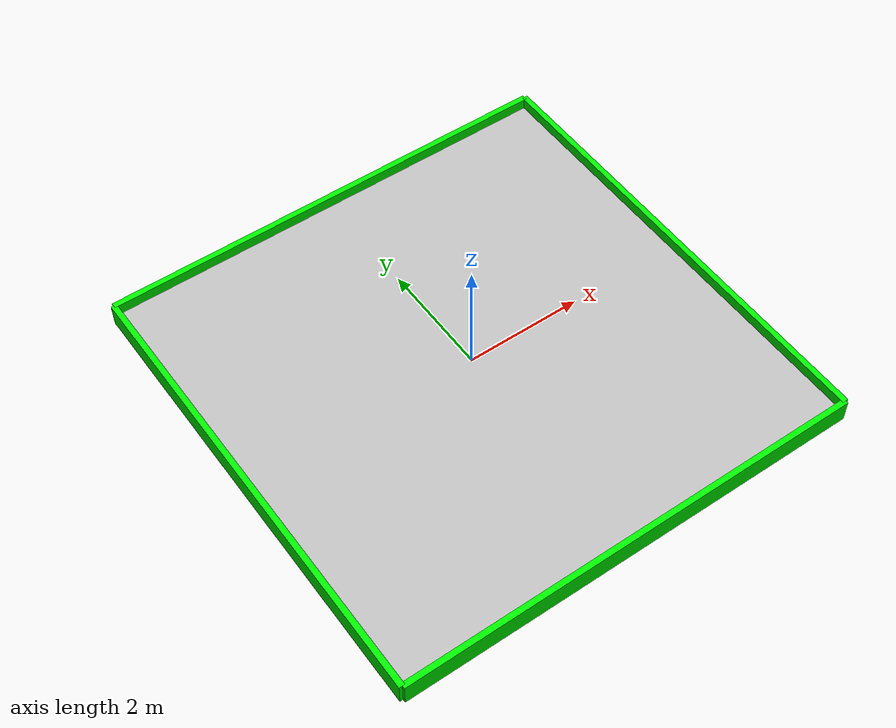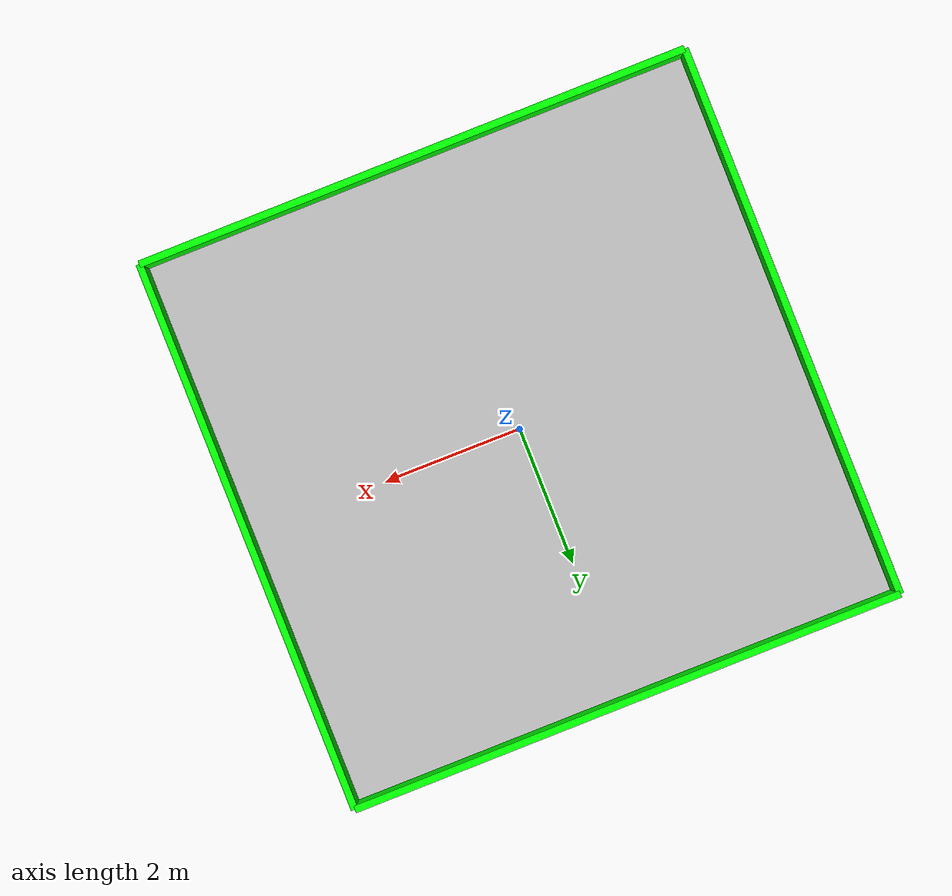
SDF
<sdf version='1.9'>
  <world name='line_tracking'>

    <physics name='1ms' type='ignored'>
      <max_step_size>0.001</max_step_size>
      <real_time_factor>1</real_time_factor>
      <real_time_update_rate>1000</real_time_update_rate>
    </physics>

    <plugin name='gz::sim::systems::Physics' filename='ignition-gazebo-physics-system'/>
    <plugin name='gz::sim::systems::UserCommands' filename='ignition-gazebo-user-commands-system'/>
    <plugin name='gz::sim::systems::SceneBroadcaster' filename='ignition-gazebo-scene-broadcaster-system'/>
    <plugin name='gz::sim::systems::Contact' filename='ignition-gazebo-contact-system'/>
    <plugin name='gz::sim::systems::Sensors' filename='ignition-gazebo-sensors-system'>
      <render_engine>ogre2</render_engine>
    </plugin>

    <gravity>0 0 -9.8</gravity>
    <magnetic_field>6e-06 2.3e-05 -4.2e-05</magnetic_field>
    <atmosphere type='adiabatic'/>
    <scene>
      <ambient>0.4 0.4 0.4 1</ambient>
      <background>0.7 0.7 0.7 1</background>
      <shadows>true</shadows>
    </scene>

    <light type="directional" name="sun">
      <cast_shadows>true</cast_shadows>
      <pose>0 0 10 0 0 0</pose>
      <diffuse>0.8 0.8 0.8 1</diffuse>
      <specular>0.2 0.2 0.2 1</specular>
      <attenuation>
        <range>1000</range>
        <constant>0.9</constant>
        <linear>0.01</linear>
        <quadratic>0.001</quadratic>
      </attenuation>
      <direction>-0.5 0.1 -0.9</direction>
    </light>

    <model name="ground_plane_with_line">
      <static>true</static>
      <link name="ground_plane_with_line">
        <visual name="visual">
          <geometry>
            <mesh>
              <uri>model://worlds/objects/line_plane.dae</uri>
            </mesh>
          </geometry>
        </visual>
        <collision name='collision'>
          <geometry>
            <mesh>
              <uri>model://worlds/objects/line_plane.dae</uri>
            </mesh>
          </geometry>
        </collision>
      </link>
    </model>

    <include>
      <name>border1</name>
      <uri>model://worlds/objects/borders.sdf</uri>
      <pose>0 4 0 0 0 0</pose>
    </include>

    <include>
      <name>border2</name>
      <uri>model://worlds/objects/borders.sdf</uri>
      <pose>0 -4 0 0 0 0</pose>
    </include>

    <include>
      <name>border3</name>
      <uri>model://worlds/objects/borders.sdf</uri>
      <pose>4 0 0 0 0 1.57</pose>
    </include>

    <include>
      <name>border4</name>
      <uri>model://worlds/objects/borders.sdf</uri>
      <pose>-4 0 0 0 0 1.57</pose>
    </include>

  </world>
</sdf>

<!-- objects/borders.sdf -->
<sdf version="1.6">
  <model name="border">
    <static>true</static>
    <link name='border'>
      <visual name='visual'>
        <geometry>
          <box>
            <size>8 0.1 0.4</size>
          </box>
        </geometry>
        <material>
          <ambient>0.0 1.0 0.0 1</ambient>
          <diffuse>0.0 1.0 0.0 1</diffuse>
          <specular>0.0 1.0 0.0 1</specular>
        </material>
      </visual>
      <collision name='collision'>
        <geometry>
          <box>
            <size>8 0.1 0.2</size>
          </box>
        </geometry>
      </collision>
    </link>
  </model>
</sdf>
